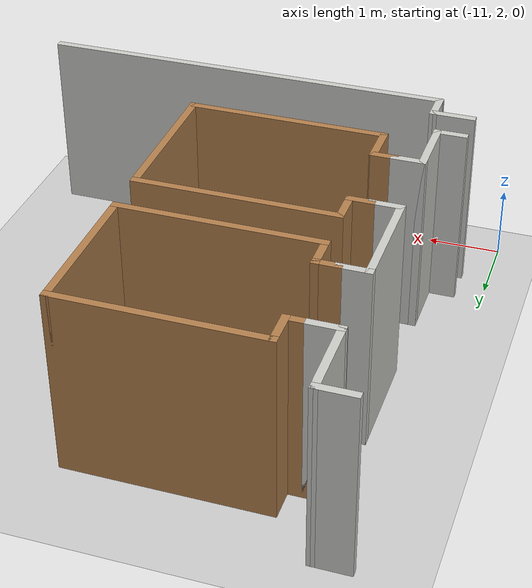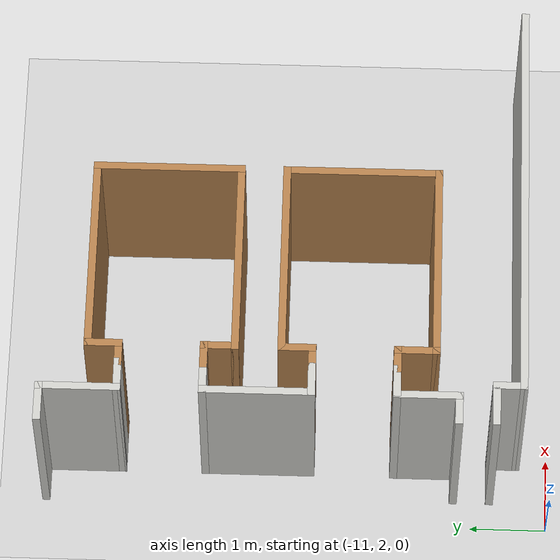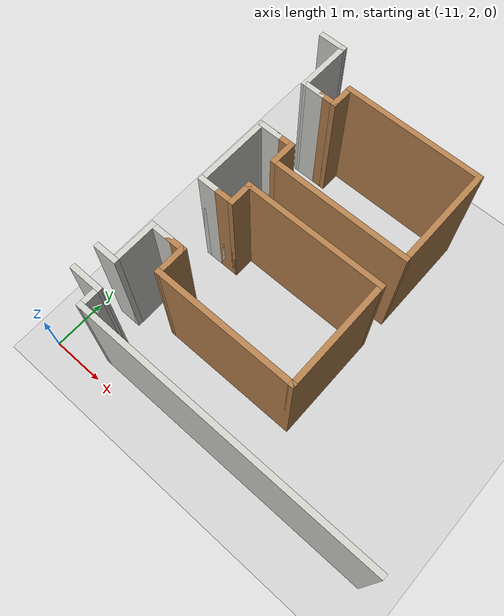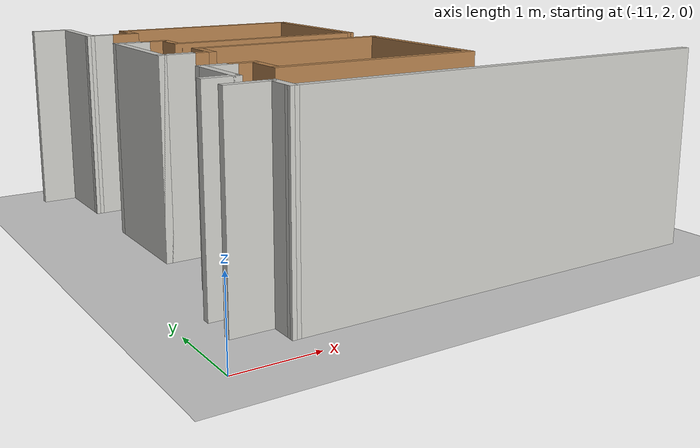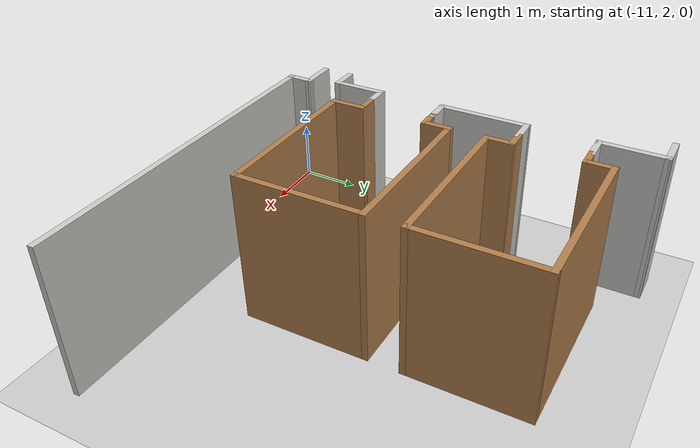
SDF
<sdf version="1.7">
 <world name="default">
  <model name="ground_plane">
   <static>1</static>
   <link name="link">
    <collision name="collision">
     <geometry><plane><normal>0 0 1</normal><size>100 100</size></plane></geometry>
     <surface><friction><ode><mu>100</mu><mu2>50</mu2></ode></friction></surface>
    </collision>
    <visual name="visual">
     <cast_shadows>0</cast_shadows>
     <geometry><plane><normal>0 0 1</normal><size>100 100</size></plane></geometry>
     <material>
      <script><uri>file://media/materials/scripts/gazebo.material</uri><name>Gazebo/Grey</name></script>
     </material>
    </visual>
   </link>
  </model>
  <model name="miraikan_5F_gate_and_elevator">
   <link name="Wall_114">
    <pose>-7.32984 11.21 0 0 -0 0</pose>
    <visual name="Wall_114_Visual">
     <pose>0 0 1.25 0 -0 0</pose>
     <geometry><box><size>0.54 0.1 2.5</size></box></geometry>
     <material>
      <script><uri>file://media/materials/scripts/gazebo.material</uri><name>Gazebo/CeilingTiled</name></script>
      <ambient>1 1 1 1</ambient>
      <shader type="pixel"/>
     </material>
     <meta><layer>0</layer></meta>
    </visual>
    <collision name="Wall_114_Collision">
     <pose>0 0 1.25 0 -0 0</pose>
     <geometry><box><size>0.54 0.1 2.5</size></box></geometry>
     <surface>
      <friction>
       <ode><mu>1</mu><mu2>1</mu2><fdir1>0 0 0</fdir1><slip1>0</slip1><slip2>0</slip2></ode>
       <torsional>
        <coefficient>1</coefficient>
        <patch_radius>0</patch_radius>
        <surface_radius>0</surface_radius>
        <use_patch_radius>1</use_patch_radius>
        <ode><slip>0</slip></ode>
       </torsional>
      </friction>
      <bounce><restitution_coefficient>0</restitution_coefficient><threshold>1e+06</threshold></bounce>
      <contact>
       <collide_without_contact>0</collide_without_contact>
       <collide_without_contact_bitmask>1</collide_without_contact_bitmask>
       <collide_bitmask>1</collide_bitmask>
       <ode>
        <soft_cfm>0</soft_cfm>
        <soft_erp>0.2</soft_erp>
        <kp>1e+13</kp>
        <kd>1</kd>
        <max_vel>0.01</max_vel>
        <min_depth>0</min_depth>
       </ode>
       <bullet>
        <split_impulse>1</split_impulse>
        <split_impulse_penetration_threshold>-0.01</split_impulse_penetration_threshold>
        <soft_cfm>0</soft_cfm>
        <soft_erp>0.2</soft_erp>
        <kp>1e+13</kp>
        <kd>1</kd>
       </bullet>
      </contact>
     </surface>
    </collision>
   </link>
   <link name="Wall_116">
    <pose>-7.10992 10.71 0 0 0 -1.57095</pose>
    <visual name="Wall_116_Visual">
     <pose>0 0 1.25 0 -0 0</pose>
     <geometry><box><size>1.1 0.1 2.5</size></box></geometry>
     <material>
      <script><uri>file://media/materials/scripts/gazebo.material</uri><name>Gazebo/CeilingTiled</name></script>
      <ambient>1 1 1 1</ambient>
      <shader type="pixel"/>
     </material>
     <meta><layer>0</layer></meta>
    </visual>
    <collision name="Wall_116_Collision">
     <pose>0 0 1.25 0 -0 0</pose>
     <geometry><box><size>1.1 0.1 2.5</size></box></geometry>
     <surface>
      <friction>
       <ode><mu>1</mu><mu2>1</mu2><fdir1>0 0 0</fdir1><slip1>0</slip1><slip2>0</slip2></ode>
       <torsional>
        <coefficient>1</coefficient>
        <patch_radius>0</patch_radius>
        <surface_radius>0</surface_radius>
        <use_patch_radius>1</use_patch_radius>
        <ode><slip>0</slip></ode>
       </torsional>
      </friction>
      <bounce><restitution_coefficient>0</restitution_coefficient><threshold>1e+06</threshold></bounce>
      <contact>
       <collide_without_contact>0</collide_without_contact>
       <collide_without_contact_bitmask>1</collide_without_contact_bitmask>
       <collide_bitmask>1</collide_bitmask>
       <ode>
        <soft_cfm>0</soft_cfm>
        <soft_erp>0.2</soft_erp>
        <kp>1e+13</kp>
        <kd>1</kd>
        <max_vel>0.01</max_vel>
        <min_depth>0</min_depth>
       </ode>
       <bullet>
        <split_impulse>1</split_impulse>
        <split_impulse_penetration_threshold>-0.01</split_impulse_penetration_threshold>
        <soft_cfm>0</soft_cfm>
        <soft_erp>0.2</soft_erp>
        <kp>1e+13</kp>
        <kd>1</kd>
       </bullet>
      </contact>
     </surface>
    </collision>
   </link>
   <link name="Wall_118">
    <pose>-6.93 10.21 0 0 -0 0</pose>
    <visual name="Wall_118_Visual">
     <pose>0 0 1.25 0 -0 0</pose>
     <geometry><box><size>0.46 0.1 2.5</size></box></geometry>
     <material>
      <script><uri>file://media/materials/scripts/gazebo.material</uri><name>Gazebo/CeilingTiled</name></script>
      <ambient>1 1 1 1</ambient>
      <shader type="pixel"/>
     </material>
     <meta><layer>0</layer></meta>
    </visual>
    <collision name="Wall_118_Collision">
     <pose>0 0 1.25 0 -0 0</pose>
     <geometry><box><size>0.46 0.1 2.5</size></box></geometry>
     <surface>
      <friction>
       <ode><mu>1</mu><mu2>1</mu2><fdir1>0 0 0</fdir1><slip1>0</slip1><slip2>0</slip2></ode>
       <torsional>
        <coefficient>1</coefficient>
        <patch_radius>0</patch_radius>
        <surface_radius>0</surface_radius>
        <use_patch_radius>1</use_patch_radius>
        <ode><slip>0</slip></ode>
       </torsional>
      </friction>
      <bounce><restitution_coefficient>0</restitution_coefficient><threshold>1e+06</threshold></bounce>
      <contact>
       <collide_without_contact>0</collide_without_contact>
       <collide_without_contact_bitmask>1</collide_without_contact_bitmask>
       <collide_bitmask>1</collide_bitmask>
       <ode>
        <soft_cfm>0</soft_cfm>
        <soft_erp>0.2</soft_erp>
        <kp>1e+13</kp>
        <kd>1</kd>
        <max_vel>0.01</max_vel>
        <min_depth>0</min_depth>
       </ode>
       <bullet>
        <split_impulse>1</split_impulse>
        <split_impulse_penetration_threshold>-0.01</split_impulse_penetration_threshold>
        <soft_cfm>0</soft_cfm>
        <soft_erp>0.2</soft_erp>
        <kp>1e+13</kp>
        <kd>1</kd>
       </bullet>
      </contact>
     </surface>
    </collision>
   </link>
   <link name="Wall_122">
    <pose>-6.93 9.11 0 0 -0 3.14159</pose>
    <visual name="Wall_122_Visual">
     <pose>0 0 1.25 0 -0 0</pose>
     <geometry><box><size>0.46 0.1 2.5</size></box></geometry>
     <material>
      <script><uri>file://media/materials/scripts/gazebo.material</uri><name>Gazebo/CeilingTiled</name></script>
      <ambient>1 1 1 1</ambient>
      <shader type="pixel"/>
     </material>
     <meta><layer>0</layer></meta>
    </visual>
    <collision name="Wall_122_Collision">
     <pose>0 0 1.25 0 -0 0</pose>
     <geometry><box><size>0.46 0.1 2.5</size></box></geometry>
     <surface>
      <friction>
       <ode><mu>1</mu><mu2>1</mu2><fdir1>0 0 0</fdir1><slip1>0</slip1><slip2>0</slip2></ode>
       <torsional>
        <coefficient>1</coefficient>
        <patch_radius>0</patch_radius>
        <surface_radius>0</surface_radius>
        <use_patch_radius>1</use_patch_radius>
        <ode><slip>0</slip></ode>
       </torsional>
      </friction>
      <bounce><restitution_coefficient>0</restitution_coefficient><threshold>1e+06</threshold></bounce>
      <contact>
       <collide_without_contact>0</collide_without_contact>
       <collide_without_contact_bitmask>1</collide_without_contact_bitmask>
       <collide_bitmask>1</collide_bitmask>
       <ode>
        <soft_cfm>0</soft_cfm>
        <soft_erp>0.2</soft_erp>
        <kp>1e+13</kp>
        <kd>1</kd>
        <max_vel>0.01</max_vel>
        <min_depth>0</min_depth>
       </ode>
       <bullet>
        <split_impulse>1</split_impulse>
        <split_impulse_penetration_threshold>-0.01</split_impulse_penetration_threshold>
        <soft_cfm>0</soft_cfm>
        <soft_erp>0.2</soft_erp>
        <kp>1e+13</kp>
        <kd>1</kd>
       </bullet>
      </contact>
     </surface>
    </collision>
   </link>
   <link name="Wall_124">
    <pose>-7.11 8.41 0 0 0 -1.5708</pose>
    <visual name="Wall_124_Visual">
     <pose>0 0 1.25 0 -0 0</pose>
     <geometry><box><size>1.5 0.1 2.5</size></box></geometry>
     <material>
      <script><uri>file://media/materials/scripts/gazebo.material</uri><name>Gazebo/CeilingTiled</name></script>
      <ambient>1 1 1 1</ambient>
      <shader type="pixel"/>
     </material>
     <meta><layer>0</layer></meta>
    </visual>
    <collision name="Wall_124_Collision">
     <pose>0 0 1.25 0 -0 0</pose>
     <geometry><box><size>1.5 0.1 2.5</size></box></geometry>
     <surface>
      <friction>
       <ode><mu>1</mu><mu2>1</mu2><fdir1>0 0 0</fdir1><slip1>0</slip1><slip2>0</slip2></ode>
       <torsional>
        <coefficient>1</coefficient>
        <patch_radius>0</patch_radius>
        <surface_radius>0</surface_radius>
        <use_patch_radius>1</use_patch_radius>
        <ode><slip>0</slip></ode>
       </torsional>
      </friction>
      <bounce><restitution_coefficient>0</restitution_coefficient><threshold>1e+06</threshold></bounce>
      <contact>
       <collide_without_contact>0</collide_without_contact>
       <collide_without_contact_bitmask>1</collide_without_contact_bitmask>
       <collide_bitmask>1</collide_bitmask>
       <ode>
        <soft_cfm>0</soft_cfm>
        <soft_erp>0.2</soft_erp>
        <kp>1e+13</kp>
        <kd>1</kd>
        <max_vel>0.01</max_vel>
        <min_depth>0</min_depth>
       </ode>
       <bullet>
        <split_impulse>1</split_impulse>
        <split_impulse_penetration_threshold>-0.01</split_impulse_penetration_threshold>
        <soft_cfm>0</soft_cfm>
        <soft_erp>0.2</soft_erp>
        <kp>1e+13</kp>
        <kd>1</kd>
       </bullet>
      </contact>
     </surface>
    </collision>
   </link>
   <link name="Wall_126">
    <pose>-6.93 7.71 0 0 -0 0</pose>
    <visual name="Wall_126_Visual">
     <pose>0 0 1.25 0 -0 0</pose>
     <geometry><box><size>0.46 0.1 2.5</size></box></geometry>
     <material>
      <script><uri>file://media/materials/scripts/gazebo.material</uri><name>Gazebo/CeilingTiled</name></script>
      <ambient>1 1 1 1</ambient>
      <shader type="pixel"/>
     </material>
     <meta><layer>0</layer></meta>
    </visual>
    <collision name="Wall_126_Collision">
     <pose>0 0 1.25 0 -0 0</pose>
     <geometry><box><size>0.46 0.1 2.5</size></box></geometry>
     <surface>
      <friction>
       <ode><mu>1</mu><mu2>1</mu2><fdir1>0 0 0</fdir1><slip1>0</slip1><slip2>0</slip2></ode>
       <torsional>
        <coefficient>1</coefficient>
        <patch_radius>0</patch_radius>
        <surface_radius>0</surface_radius>
        <use_patch_radius>1</use_patch_radius>
        <ode><slip>0</slip></ode>
       </torsional>
      </friction>
      <bounce><restitution_coefficient>0</restitution_coefficient><threshold>1e+06</threshold></bounce>
      <contact>
       <collide_without_contact>0</collide_without_contact>
       <collide_without_contact_bitmask>1</collide_without_contact_bitmask>
       <collide_bitmask>1</collide_bitmask>
       <ode>
        <soft_cfm>0</soft_cfm>
        <soft_erp>0.2</soft_erp>
        <kp>1e+13</kp>
        <kd>1</kd>
        <max_vel>0.01</max_vel>
        <min_depth>0</min_depth>
       </ode>
       <bullet>
        <split_impulse>1</split_impulse>
        <split_impulse_penetration_threshold>-0.01</split_impulse_penetration_threshold>
        <soft_cfm>0</soft_cfm>
        <soft_erp>0.2</soft_erp>
        <kp>1e+13</kp>
        <kd>1</kd>
       </bullet>
      </contact>
     </surface>
    </collision>
   </link>
   <link name="Wall_130">
    <pose>-6.93 6.61 0 0 -0 3.14159</pose>
    <visual name="Wall_130_Visual">
     <pose>0 0 1.25 0 -0 0</pose>
     <geometry><box><size>0.46 0.1 2.5</size></box></geometry>
     <material>
      <script><uri>file://media/materials/scripts/gazebo.material</uri><name>Gazebo/CeilingTiled</name></script>
      <ambient>1 1 1 1</ambient>
      <shader type="pixel"/>
     </material>
     <meta><layer>0</layer></meta>
    </visual>
    <collision name="Wall_130_Collision">
     <pose>0 0 1.25 0 -0 0</pose>
     <geometry><box><size>0.46 0.1 2.5</size></box></geometry>
     <surface>
      <friction>
       <ode><mu>1</mu><mu2>1</mu2><fdir1>0 0 0</fdir1><slip1>0</slip1><slip2>0</slip2></ode>
       <torsional>
        <coefficient>1</coefficient>
        <patch_radius>0</patch_radius>
        <surface_radius>0</surface_radius>
        <use_patch_radius>1</use_patch_radius>
        <ode><slip>0</slip></ode>
       </torsional>
      </friction>
      <bounce><restitution_coefficient>0</restitution_coefficient><threshold>1e+06</threshold></bounce>
      <contact>
       <collide_without_contact>0</collide_without_contact>
       <collide_without_contact_bitmask>1</collide_without_contact_bitmask>
       <collide_bitmask>1</collide_bitmask>
       <ode>
        <soft_cfm>0</soft_cfm>
        <soft_erp>0.2</soft_erp>
        <kp>1e+13</kp>
        <kd>1</kd>
        <max_vel>0.01</max_vel>
        <min_depth>0</min_depth>
       </ode>
       <bullet>
        <split_impulse>1</split_impulse>
        <split_impulse_penetration_threshold>-0.01</split_impulse_penetration_threshold>
        <soft_cfm>0</soft_cfm>
        <soft_erp>0.2</soft_erp>
        <kp>1e+13</kp>
        <kd>1</kd>
       </bullet>
      </contact>
     </surface>
    </collision>
   </link>
   <link name="Wall_132">
    <pose>-7.11 6.21 0 0 0 -1.5708</pose>
    <visual name="Wall_132_Visual">
     <pose>0 0 1.25 0 -0 0</pose>
     <geometry><box><size>0.9 0.1 2.5</size></box></geometry>
     <material>
      <script><uri>file://media/materials/scripts/gazebo.material</uri><name>Gazebo/CeilingTiled</name></script>
      <ambient>1 1 1 1</ambient>
      <shader type="pixel"/>
     </material>
     <meta><layer>0</layer></meta>
    </visual>
    <collision name="Wall_132_Collision">
     <pose>0 0 1.25 0 -0 0</pose>
     <geometry><box><size>0.9 0.1 2.5</size></box></geometry>
     <surface>
      <friction>
       <ode><mu>1</mu><mu2>1</mu2><fdir1>0 0 0</fdir1><slip1>0</slip1><slip2>0</slip2></ode>
       <torsional>
        <coefficient>1</coefficient>
        <patch_radius>0</patch_radius>
        <surface_radius>0</surface_radius>
        <use_patch_radius>1</use_patch_radius>
        <ode><slip>0</slip></ode>
       </torsional>
      </friction>
      <bounce><restitution_coefficient>0</restitution_coefficient><threshold>1e+06</threshold></bounce>
      <contact>
       <collide_without_contact>0</collide_without_contact>
       <collide_without_contact_bitmask>1</collide_without_contact_bitmask>
       <collide_bitmask>1</collide_bitmask>
       <ode>
        <soft_cfm>0</soft_cfm>
        <soft_erp>0.2</soft_erp>
        <kp>1e+13</kp>
        <kd>1</kd>
        <max_vel>0.01</max_vel>
        <min_depth>0</min_depth>
       </ode>
       <bullet>
        <split_impulse>1</split_impulse>
        <split_impulse_penetration_threshold>-0.01</split_impulse_penetration_threshold>
        <soft_cfm>0</soft_cfm>
        <soft_erp>0.2</soft_erp>
        <kp>1e+13</kp>
        <kd>1</kd>
       </bullet>
      </contact>
     </surface>
    </collision>
   </link>
   <link name="Wall_134">
    <pose>-7.285 5.81 0 0 -0 3.14159</pose>
    <visual name="Wall_134_Visual">
     <pose>0 0 1.25 0 -0 0</pose>
     <geometry><box><size>0.45 0.1 2.5</size></box></geometry>
     <material>
      <script><uri>file://media/materials/scripts/gazebo.material</uri><name>Gazebo/CeilingTiled</name></script>
      <ambient>1 1 1 1</ambient>
      <shader type="pixel"/>
     </material>
     <meta><layer>0</layer></meta>
    </visual>
    <collision name="Wall_134_Collision">
     <pose>0 0 1.25 0 -0 0</pose>
     <geometry><box><size>0.45 0.1 2.5</size></box></geometry>
     <surface>
      <friction>
       <ode><mu>1</mu><mu2>1</mu2><fdir1>0 0 0</fdir1><slip1>0</slip1><slip2>0</slip2></ode>
       <torsional>
        <coefficient>1</coefficient>
        <patch_radius>0</patch_radius>
        <surface_radius>0</surface_radius>
        <use_patch_radius>1</use_patch_radius>
        <ode><slip>0</slip></ode>
       </torsional>
      </friction>
      <bounce><restitution_coefficient>0</restitution_coefficient><threshold>1e+06</threshold></bounce>
      <contact>
       <collide_without_contact>0</collide_without_contact>
       <collide_without_contact_bitmask>1</collide_without_contact_bitmask>
       <collide_bitmask>1</collide_bitmask>
       <ode>
        <soft_cfm>0</soft_cfm>
        <soft_erp>0.2</soft_erp>
        <kp>1e+13</kp>
        <kd>1</kd>
        <max_vel>0.01</max_vel>
        <min_depth>0</min_depth>
       </ode>
       <bullet>
        <split_impulse>1</split_impulse>
        <split_impulse_penetration_threshold>-0.01</split_impulse_penetration_threshold>
        <soft_cfm>0</soft_cfm>
        <soft_erp>0.2</soft_erp>
        <kp>1e+13</kp>
        <kd>1</kd>
       </bullet>
      </contact>
     </surface>
    </collision>
   </link>
   <link name="Wall_143">
    <pose>-7.20482 5.33 0 0 -0 0</pose>
    <visual name="Wall_143_Visual">
     <pose>0 0 1.25 0 -0 0</pose>
     <geometry><box><size>0.61 0.1 2.5</size></box></geometry>
     <material>
      <script><uri>file://media/materials/scripts/gazebo.material</uri><name>Gazebo/CeilingTiled</name></script>
      <ambient>1 1 1 1</ambient>
      <shader type="pixel"/>
     </material>
     <meta><layer>0</layer></meta>
    </visual>
    <collision name="Wall_143_Collision">
     <pose>0 0 1.25 0 -0 0</pose>
     <geometry><box><size>0.61 0.1 2.5</size></box></geometry>
     <surface>
      <friction>
       <ode><mu>1</mu><mu2>1</mu2><fdir1>0 0 0</fdir1><slip1>0</slip1><slip2>0</slip2></ode>
       <torsional>
        <coefficient>1</coefficient>
        <patch_radius>0</patch_radius>
        <surface_radius>0</surface_radius>
        <use_patch_radius>1</use_patch_radius>
        <ode><slip>0</slip></ode>
       </torsional>
      </friction>
      <bounce><restitution_coefficient>0</restitution_coefficient><threshold>1e+06</threshold></bounce>
      <contact>
       <collide_without_contact>0</collide_without_contact>
       <collide_without_contact_bitmask>1</collide_without_contact_bitmask>
       <collide_bitmask>1</collide_bitmask>
       <ode>
        <soft_cfm>0</soft_cfm>
        <soft_erp>0.2</soft_erp>
        <kp>1e+13</kp>
        <kd>1</kd>
        <max_vel>0.01</max_vel>
        <min_depth>0</min_depth>
       </ode>
       <bullet>
        <split_impulse>1</split_impulse>
        <split_impulse_penetration_threshold>-0.01</split_impulse_penetration_threshold>
        <soft_cfm>0</soft_cfm>
        <soft_erp>0.2</soft_erp>
        <kp>1e+13</kp>
        <kd>1</kd>
       </bullet>
      </contact>
     </surface>
    </collision>
   </link>
   <link name="Wall_147">
    <pose>-6.94991 5.155 0 0 0 -1.5713</pose>
    <visual name="Wall_147_Visual">
     <pose>0 0 1.25 0 -0 0</pose>
     <geometry><box><size>0.45 0.1 2.5</size></box></geometry>
     <material>
      <script><uri>file://media/materials/scripts/gazebo.material</uri><name>Gazebo/CeilingTiled</name></script>
      <ambient>1 1 1 1</ambient>
      <shader type="pixel"/>
     </material>
     <meta><layer>0</layer></meta>
    </visual>
    <collision name="Wall_147_Collision">
     <pose>0 0 1.25 0 -0 0</pose>
     <geometry><box><size>0.45 0.1 2.5</size></box></geometry>
     <surface>
      <friction>
       <ode><mu>1</mu><mu2>1</mu2><fdir1>0 0 0</fdir1><slip1>0</slip1><slip2>0</slip2></ode>
       <torsional>
        <coefficient>1</coefficient>
        <patch_radius>0</patch_radius>
        <surface_radius>0</surface_radius>
        <use_patch_radius>1</use_patch_radius>
        <ode><slip>0</slip></ode>
       </torsional>
      </friction>
      <bounce><restitution_coefficient>0</restitution_coefficient><threshold>1e+06</threshold></bounce>
      <contact>
       <collide_without_contact>0</collide_without_contact>
       <collide_without_contact_bitmask>1</collide_without_contact_bitmask>
       <collide_bitmask>1</collide_bitmask>
       <ode>
        <soft_cfm>0</soft_cfm>
        <soft_erp>0.2</soft_erp>
        <kp>1e+13</kp>
        <kd>1</kd>
        <max_vel>0.01</max_vel>
        <min_depth>0</min_depth>
       </ode>
       <bullet>
        <split_impulse>1</split_impulse>
        <split_impulse_penetration_threshold>-0.01</split_impulse_penetration_threshold>
        <soft_cfm>0</soft_cfm>
        <soft_erp>0.2</soft_erp>
        <kp>1e+13</kp>
        <kd>1</kd>
       </bullet>
      </contact>
     </surface>
    </collision>
   </link>
   <link name="Wall_149">
    <pose>-4.2 4.98 0 0 -0 0</pose>
    <visual name="Wall_149_Visual">
     <pose>0 0 1.25 0 -0 0</pose>
     <geometry><box><size>5.6 0.1 2.5</size></box></geometry>
     <material>
      <script><uri>file://media/materials/scripts/gazebo.material</uri><name>Gazebo/CeilingTiled</name></script>
      <ambient>1 1 1 1</ambient>
      <shader type="pixel"/>
     </material>
     <meta><layer>0</layer></meta>
    </visual>
    <collision name="Wall_149_Collision">
     <pose>0 0 1.25 0 -0 0</pose>
     <geometry><box><size>5.6 0.1 2.5</size></box></geometry>
     <surface>
      <friction>
       <ode><mu>1</mu><mu2>1</mu2><fdir1>0 0 0</fdir1><slip1>0</slip1><slip2>0</slip2></ode>
       <torsional>
        <coefficient>1</coefficient>
        <patch_radius>0</patch_radius>
        <surface_radius>0</surface_radius>
        <use_patch_radius>1</use_patch_radius>
        <ode><slip>0</slip></ode>
       </torsional>
      </friction>
      <bounce><restitution_coefficient>0</restitution_coefficient><threshold>1e+06</threshold></bounce>
      <contact>
       <collide_without_contact>0</collide_without_contact>
       <collide_without_contact_bitmask>1</collide_without_contact_bitmask>
       <collide_bitmask>1</collide_bitmask>
       <ode>
        <soft_cfm>0</soft_cfm>
        <soft_erp>0.2</soft_erp>
        <kp>1e+13</kp>
        <kd>1</kd>
        <max_vel>0.01</max_vel>
        <min_depth>0</min_depth>
       </ode>
       <bullet>
        <split_impulse>1</split_impulse>
        <split_impulse_penetration_threshold>-0.01</split_impulse_penetration_threshold>
        <soft_cfm>0</soft_cfm>
        <soft_erp>0.2</soft_erp>
        <kp>1e+13</kp>
        <kd>1</kd>
       </bullet>
      </contact>
     </surface>
    </collision>
   </link>
   <link name="Wall_433">
    <pose>-6.615 6.61 0 0 -0 0</pose>
    <visual name="Wall_433_Visual">
     <pose>0 0 1.25 0 -0 0</pose>
     <geometry><box><size>0.37 0.1 2.5</size></box></geometry>
     <material>
      <script><uri>file://media/materials/scripts/gazebo.material</uri><name>Gazebo/Wood</name></script>
      <ambient>1 1 1 1</ambient>
      <shader type="pixel"/>
     </material>
     <meta><layer>0</layer></meta>
    </visual>
    <collision name="Wall_433_Collision">
     <pose>0 0 1.25 0 -0 0</pose>
     <geometry><box><size>0.37 0.1 2.5</size></box></geometry>
     <surface>
      <friction>
       <ode><mu>1</mu><mu2>1</mu2><fdir1>0 0 0</fdir1><slip1>0</slip1><slip2>0</slip2></ode>
       <torsional>
        <coefficient>1</coefficient>
        <patch_radius>0</patch_radius>
        <surface_radius>0</surface_radius>
        <use_patch_radius>1</use_patch_radius>
        <ode><slip>0</slip></ode>
       </torsional>
      </friction>
      <bounce><restitution_coefficient>0</restitution_coefficient><threshold>1e+06</threshold></bounce>
      <contact>
       <collide_without_contact>0</collide_without_contact>
       <collide_without_contact_bitmask>1</collide_without_contact_bitmask>
       <collide_bitmask>1</collide_bitmask>
       <ode>
        <soft_cfm>0</soft_cfm>
        <soft_erp>0.2</soft_erp>
        <kp>1e+13</kp>
        <kd>1</kd>
        <max_vel>0.01</max_vel>
        <min_depth>0</min_depth>
       </ode>
       <bullet>
        <split_impulse>1</split_impulse>
        <split_impulse_penetration_threshold>-0.01</split_impulse_penetration_threshold>
        <soft_cfm>0</soft_cfm>
        <soft_erp>0.2</soft_erp>
        <kp>1e+13</kp>
        <kd>1</kd>
       </bullet>
      </contact>
     </surface>
    </collision>
   </link>
   <link name="Wall_439">
    <pose>-6.48 6.36 0 0 0 -1.5708</pose>
    <visual name="Wall_439_Visual">
     <pose>0 0 1.25 0 -0 0</pose>
     <geometry><box><size>0.6 0.1 2.5</size></box></geometry>
     <material>
      <script><uri>file://media/materials/scripts/gazebo.material</uri><name>Gazebo/Wood</name></script>
      <ambient>1 1 1 1</ambient>
      <shader type="pixel"/>
     </material>
     <meta><layer>0</layer></meta>
    </visual>
    <collision name="Wall_439_Collision">
     <pose>0 0 1.25 0 -0 0</pose>
     <geometry><box><size>0.6 0.1 2.5</size></box></geometry>
     <surface>
      <friction>
       <ode><mu>1</mu><mu2>1</mu2><fdir1>0 0 0</fdir1><slip1>0</slip1><slip2>0</slip2></ode>
       <torsional>
        <coefficient>1</coefficient>
        <patch_radius>0</patch_radius>
        <surface_radius>0</surface_radius>
        <use_patch_radius>1</use_patch_radius>
        <ode><slip>0</slip></ode>
       </torsional>
      </friction>
      <bounce><restitution_coefficient>0</restitution_coefficient><threshold>1e+06</threshold></bounce>
      <contact>
       <collide_without_contact>0</collide_without_contact>
       <collide_without_contact_bitmask>1</collide_without_contact_bitmask>
       <collide_bitmask>1</collide_bitmask>
       <ode>
        <soft_cfm>0</soft_cfm>
        <soft_erp>0.2</soft_erp>
        <kp>1e+13</kp>
        <kd>1</kd>
        <max_vel>0.01</max_vel>
        <min_depth>0</min_depth>
       </ode>
       <bullet>
        <split_impulse>1</split_impulse>
        <split_impulse_penetration_threshold>-0.01</split_impulse_penetration_threshold>
        <soft_cfm>0</soft_cfm>
        <soft_erp>0.2</soft_erp>
        <kp>1e+13</kp>
        <kd>1</kd>
       </bullet>
      </contact>
     </surface>
    </collision>
   </link>
   <link name="Wall_441">
    <pose>-5.18 6.11 0 0 -0 0</pose>
    <visual name="Wall_441_Visual">
     <pose>0 0 1.25 0 -0 0</pose>
     <geometry><box><size>2.7 0.1 2.5</size></box></geometry>
     <material>
      <script><uri>file://media/materials/scripts/gazebo.material</uri><name>Gazebo/Wood</name></script>
      <ambient>1 1 1 1</ambient>
      <shader type="pixel"/>
     </material>
     <meta><layer>0</layer></meta>
    </visual>
    <collision name="Wall_441_Collision">
     <pose>0 0 1.25 0 -0 0</pose>
     <geometry><box><size>2.7 0.1 2.5</size></box></geometry>
     <surface>
      <friction>
       <ode><mu>1</mu><mu2>1</mu2><fdir1>0 0 0</fdir1><slip1>0</slip1><slip2>0</slip2></ode>
       <torsional>
        <coefficient>1</coefficient>
        <patch_radius>0</patch_radius>
        <surface_radius>0</surface_radius>
        <use_patch_radius>1</use_patch_radius>
        <ode><slip>0</slip></ode>
       </torsional>
      </friction>
      <bounce><restitution_coefficient>0</restitution_coefficient><threshold>1e+06</threshold></bounce>
      <contact>
       <collide_without_contact>0</collide_without_contact>
       <collide_without_contact_bitmask>1</collide_without_contact_bitmask>
       <collide_bitmask>1</collide_bitmask>
       <ode>
        <soft_cfm>0</soft_cfm>
        <soft_erp>0.2</soft_erp>
        <kp>1e+13</kp>
        <kd>1</kd>
        <max_vel>0.01</max_vel>
        <min_depth>0</min_depth>
       </ode>
       <bullet>
        <split_impulse>1</split_impulse>
        <split_impulse_penetration_threshold>-0.01</split_impulse_penetration_threshold>
        <soft_cfm>0</soft_cfm>
        <soft_erp>0.2</soft_erp>
        <kp>1e+13</kp>
        <kd>1</kd>
       </bullet>
      </contact>
     </surface>
    </collision>
   </link>
   <link name="Wall_443">
    <pose>-3.88 7.06 0 0 -0 1.5708</pose>
    <visual name="Wall_443_Visual">
     <pose>0 0 1.25 0 -0 0</pose>
     <geometry><box><size>2 0.1 2.5</size></box></geometry>
     <material>
      <script><uri>file://media/materials/scripts/gazebo.material</uri><name>Gazebo/Wood</name></script>
      <ambient>1 1 1 1</ambient>
      <shader type="pixel"/>
     </material>
     <meta><layer>0</layer></meta>
    </visual>
    <collision name="Wall_443_Collision">
     <pose>0 0 1.25 0 -0 0</pose>
     <geometry><box><size>2 0.1 2.5</size></box></geometry>
     <surface>
      <friction>
       <ode><mu>1</mu><mu2>1</mu2><fdir1>0 0 0</fdir1><slip1>0</slip1><slip2>0</slip2></ode>
       <torsional>
        <coefficient>1</coefficient>
        <patch_radius>0</patch_radius>
        <surface_radius>0</surface_radius>
        <use_patch_radius>1</use_patch_radius>
        <ode><slip>0</slip></ode>
       </torsional>
      </friction>
      <bounce><restitution_coefficient>0</restitution_coefficient><threshold>1e+06</threshold></bounce>
      <contact>
       <collide_without_contact>0</collide_without_contact>
       <collide_without_contact_bitmask>1</collide_without_contact_bitmask>
       <collide_bitmask>1</collide_bitmask>
       <ode>
        <soft_cfm>0</soft_cfm>
        <soft_erp>0.2</soft_erp>
        <kp>1e+13</kp>
        <kd>1</kd>
        <max_vel>0.01</max_vel>
        <min_depth>0</min_depth>
       </ode>
       <bullet>
        <split_impulse>1</split_impulse>
        <split_impulse_penetration_threshold>-0.01</split_impulse_penetration_threshold>
        <soft_cfm>0</soft_cfm>
        <soft_erp>0.2</soft_erp>
        <kp>1e+13</kp>
        <kd>1</kd>
       </bullet>
      </contact>
     </surface>
    </collision>
   </link>
   <link name="Wall_445">
    <pose>-6.615 7.71 0 0 -0 0</pose>
    <visual name="Wall_445_Visual">
     <pose>0 0 1.25 0 -0 0</pose>
     <geometry><box><size>0.37 0.1 2.5</size></box></geometry>
     <material>
      <script><uri>file://media/materials/scripts/gazebo.material</uri><name>Gazebo/Wood</name></script>
      <ambient>1 1 1 1</ambient>
      <shader type="pixel"/>
     </material>
     <meta><layer>0</layer></meta>
    </visual>
    <collision name="Wall_445_Collision">
     <pose>0 0 1.25 0 -0 0</pose>
     <geometry><box><size>0.37 0.1 2.5</size></box></geometry>
     <surface>
      <friction>
       <ode><mu>1</mu><mu2>1</mu2><fdir1>0 0 0</fdir1><slip1>0</slip1><slip2>0</slip2></ode>
       <torsional>
        <coefficient>1</coefficient>
        <patch_radius>0</patch_radius>
        <surface_radius>0</surface_radius>
        <use_patch_radius>1</use_patch_radius>
        <ode><slip>0</slip></ode>
       </torsional>
      </friction>
      <bounce><restitution_coefficient>0</restitution_coefficient><threshold>1e+06</threshold></bounce>
      <contact>
       <collide_without_contact>0</collide_without_contact>
       <collide_without_contact_bitmask>1</collide_without_contact_bitmask>
       <collide_bitmask>1</collide_bitmask>
       <ode>
        <soft_cfm>0</soft_cfm>
        <soft_erp>0.2</soft_erp>
        <kp>1e+13</kp>
        <kd>1</kd>
        <max_vel>0.01</max_vel>
        <min_depth>0</min_depth>
       </ode>
       <bullet>
        <split_impulse>1</split_impulse>
        <split_impulse_penetration_threshold>-0.01</split_impulse_penetration_threshold>
        <soft_cfm>0</soft_cfm>
        <soft_erp>0.2</soft_erp>
        <kp>1e+13</kp>
        <kd>1</kd>
       </bullet>
      </contact>
     </surface>
    </collision>
   </link>
   <link name="Wall_447">
    <pose>-6.48 7.91 0 0 -0 1.5708</pose>
    <visual name="Wall_447_Visual">
     <pose>0 0 1.25 0 -0 0</pose>
     <geometry><box><size>0.5 0.1 2.5</size></box></geometry>
     <material>
      <script><uri>file://media/materials/scripts/gazebo.material</uri><name>Gazebo/Wood</name></script>
      <ambient>1 1 1 1</ambient>
      <shader type="pixel"/>
     </material>
     <meta><layer>0</layer></meta>
    </visual>
    <collision name="Wall_447_Collision">
     <pose>0 0 1.25 0 -0 0</pose>
     <geometry><box><size>0.5 0.1 2.5</size></box></geometry>
     <surface>
      <friction>
       <ode><mu>1</mu><mu2>1</mu2><fdir1>0 0 0</fdir1><slip1>0</slip1><slip2>0</slip2></ode>
       <torsional>
        <coefficient>1</coefficient>
        <patch_radius>0</patch_radius>
        <surface_radius>0</surface_radius>
        <use_patch_radius>1</use_patch_radius>
        <ode><slip>0</slip></ode>
       </torsional>
      </friction>
      <bounce><restitution_coefficient>0</restitution_coefficient><threshold>1e+06</threshold></bounce>
      <contact>
       <collide_without_contact>0</collide_without_contact>
       <collide_without_contact_bitmask>1</collide_without_contact_bitmask>
       <collide_bitmask>1</collide_bitmask>
       <ode>
        <soft_cfm>0</soft_cfm>
        <soft_erp>0.2</soft_erp>
        <kp>1e+13</kp>
        <kd>1</kd>
        <max_vel>0.01</max_vel>
        <min_depth>0</min_depth>
       </ode>
       <bullet>
        <split_impulse>1</split_impulse>
        <split_impulse_penetration_threshold>-0.01</split_impulse_penetration_threshold>
        <soft_cfm>0</soft_cfm>
        <soft_erp>0.2</soft_erp>
        <kp>1e+13</kp>
        <kd>1</kd>
       </bullet>
      </contact>
     </surface>
    </collision>
   </link>
   <link name="Wall_449">
    <pose>-5.18 8.11 0 0 -0 0</pose>
    <visual name="Wall_449_Visual">
     <pose>0 0 1.25 0 -0 0</pose>
     <geometry><box><size>2.7 0.1 2.5</size></box></geometry>
     <material>
      <script><uri>file://media/materials/scripts/gazebo.material</uri><name>Gazebo/Wood</name></script>
      <ambient>1 1 1 1</ambient>
      <shader type="pixel"/>
     </material>
     <meta><layer>0</layer></meta>
    </visual>
    <collision name="Wall_449_Collision">
     <pose>0 0 1.25 0 -0 0</pose>
     <geometry><box><size>2.7 0.1 2.5</size></box></geometry>
     <surface>
      <friction>
       <ode><mu>1</mu><mu2>1</mu2><fdir1>0 0 0</fdir1><slip1>0</slip1><slip2>0</slip2></ode>
       <torsional>
        <coefficient>1</coefficient>
        <patch_radius>0</patch_radius>
        <surface_radius>0</surface_radius>
        <use_patch_radius>1</use_patch_radius>
        <ode><slip>0</slip></ode>
       </torsional>
      </friction>
      <bounce><restitution_coefficient>0</restitution_coefficient><threshold>1e+06</threshold></bounce>
      <contact>
       <collide_without_contact>0</collide_without_contact>
       <collide_without_contact_bitmask>1</collide_without_contact_bitmask>
       <collide_bitmask>1</collide_bitmask>
       <ode>
        <soft_cfm>0</soft_cfm>
        <soft_erp>0.2</soft_erp>
        <kp>1e+13</kp>
        <kd>1</kd>
        <max_vel>0.01</max_vel>
        <min_depth>0</min_depth>
       </ode>
       <bullet>
        <split_impulse>1</split_impulse>
        <split_impulse_penetration_threshold>-0.01</split_impulse_penetration_threshold>
        <soft_cfm>0</soft_cfm>
        <soft_erp>0.2</soft_erp>
        <kp>1e+13</kp>
        <kd>1</kd>
       </bullet>
      </contact>
     </surface>
    </collision>
   </link>
   <link name="Wall_451">
    <pose>-6.615 9.11 0 0 -0 0</pose>
    <visual name="Wall_451_Visual">
     <pose>0 0 1.25 0 -0 0</pose>
     <geometry><box><size>0.37 0.1 2.5</size></box></geometry>
     <material>
      <script><uri>file://media/materials/scripts/gazebo.material</uri><name>Gazebo/Wood</name></script>
      <ambient>1 1 1 1</ambient>
      <shader type="pixel"/>
     </material>
     <meta><layer>0</layer></meta>
    </visual>
    <collision name="Wall_451_Collision">
     <pose>0 0 1.25 0 -0 0</pose>
     <geometry><box><size>0.37 0.1 2.5</size></box></geometry>
     <surface>
      <friction>
       <ode><mu>1</mu><mu2>1</mu2><fdir1>0 0 0</fdir1><slip1>0</slip1><slip2>0</slip2></ode>
       <torsional>
        <coefficient>1</coefficient>
        <patch_radius>0</patch_radius>
        <surface_radius>0</surface_radius>
        <use_patch_radius>1</use_patch_radius>
        <ode><slip>0</slip></ode>
       </torsional>
      </friction>
      <bounce><restitution_coefficient>0</restitution_coefficient><threshold>1e+06</threshold></bounce>
      <contact>
       <collide_without_contact>0</collide_without_contact>
       <collide_without_contact_bitmask>1</collide_without_contact_bitmask>
       <collide_bitmask>1</collide_bitmask>
       <ode>
        <soft_cfm>0</soft_cfm>
        <soft_erp>0.2</soft_erp>
        <kp>1e+13</kp>
        <kd>1</kd>
        <max_vel>0.01</max_vel>
        <min_depth>0</min_depth>
       </ode>
       <bullet>
        <split_impulse>1</split_impulse>
        <split_impulse_penetration_threshold>-0.01</split_impulse_penetration_threshold>
        <soft_cfm>0</soft_cfm>
        <soft_erp>0.2</soft_erp>
        <kp>1e+13</kp>
        <kd>1</kd>
       </bullet>
      </contact>
     </surface>
    </collision>
   </link>
   <link name="Wall_454">
    <pose>-6.48 8.91 0 0 0 -1.5708</pose>
    <visual name="Wall_454_Visual">
     <pose>0 0 1.25 0 -0 0</pose>
     <geometry><box><size>0.5 0.1 2.5</size></box></geometry>
     <material>
      <script><uri>file://media/materials/scripts/gazebo.material</uri><name>Gazebo/Wood</name></script>
      <ambient>1 1 1 1</ambient>
      <shader type="pixel"/>
     </material>
     <meta><layer>0</layer></meta>
    </visual>
    <collision name="Wall_454_Collision">
     <pose>0 0 1.25 0 -0 0</pose>
     <geometry><box><size>0.5 0.1 2.5</size></box></geometry>
     <surface>
      <friction>
       <ode><mu>1</mu><mu2>1</mu2><fdir1>0 0 0</fdir1><slip1>0</slip1><slip2>0</slip2></ode>
       <torsional>
        <coefficient>1</coefficient>
        <patch_radius>0</patch_radius>
        <surface_radius>0</surface_radius>
        <use_patch_radius>1</use_patch_radius>
        <ode><slip>0</slip></ode>
       </torsional>
      </friction>
      <bounce><restitution_coefficient>0</restitution_coefficient><threshold>1e+06</threshold></bounce>
      <contact>
       <collide_without_contact>0</collide_without_contact>
       <collide_without_contact_bitmask>1</collide_without_contact_bitmask>
       <collide_bitmask>1</collide_bitmask>
       <ode>
        <soft_cfm>0</soft_cfm>
        <soft_erp>0.2</soft_erp>
        <kp>1e+13</kp>
        <kd>1</kd>
        <max_vel>0.01</max_vel>
        <min_depth>0</min_depth>
       </ode>
       <bullet>
        <split_impulse>1</split_impulse>
        <split_impulse_penetration_threshold>-0.01</split_impulse_penetration_threshold>
        <soft_cfm>0</soft_cfm>
        <soft_erp>0.2</soft_erp>
        <kp>1e+13</kp>
        <kd>1</kd>
       </bullet>
      </contact>
     </surface>
    </collision>
   </link>
   <link name="Wall_456">
    <pose>-5.18 8.71 0 0 -0 0</pose>
    <visual name="Wall_456_Visual">
     <pose>0 0 1.25 0 -0 0</pose>
     <geometry><box><size>2.7 0.1 2.5</size></box></geometry>
     <material>
      <script><uri>file://media/materials/scripts/gazebo.material</uri><name>Gazebo/Wood</name></script>
      <ambient>1 1 1 1</ambient>
      <shader type="pixel"/>
     </material>
     <meta><layer>0</layer></meta>
    </visual>
    <collision name="Wall_456_Collision">
     <pose>0 0 1.25 0 -0 0</pose>
     <geometry><box><size>2.7 0.1 2.5</size></box></geometry>
     <surface>
      <friction>
       <ode><mu>1</mu><mu2>1</mu2><fdir1>0 0 0</fdir1><slip1>0</slip1><slip2>0</slip2></ode>
       <torsional>
        <coefficient>1</coefficient>
        <patch_radius>0</patch_radius>
        <surface_radius>0</surface_radius>
        <use_patch_radius>1</use_patch_radius>
        <ode><slip>0</slip></ode>
       </torsional>
      </friction>
      <bounce><restitution_coefficient>0</restitution_coefficient><threshold>1e+06</threshold></bounce>
      <contact>
       <collide_without_contact>0</collide_without_contact>
       <collide_without_contact_bitmask>1</collide_without_contact_bitmask>
       <collide_bitmask>1</collide_bitmask>
       <ode>
        <soft_cfm>0</soft_cfm>
        <soft_erp>0.2</soft_erp>
        <kp>1e+13</kp>
        <kd>1</kd>
        <max_vel>0.01</max_vel>
        <min_depth>0</min_depth>
       </ode>
       <bullet>
        <split_impulse>1</split_impulse>
        <split_impulse_penetration_threshold>-0.01</split_impulse_penetration_threshold>
        <soft_cfm>0</soft_cfm>
        <soft_erp>0.2</soft_erp>
        <kp>1e+13</kp>
        <kd>1</kd>
       </bullet>
      </contact>
     </surface>
    </collision>
   </link>
   <link name="Wall_458">
    <pose>-6.615 10.21 0 0 -0 0</pose>
    <visual name="Wall_458_Visual">
     <pose>0 0 1.25 0 -0 0</pose>
     <geometry><box><size>0.37 0.1 2.5</size></box></geometry>
     <material>
      <script><uri>file://media/materials/scripts/gazebo.material</uri><name>Gazebo/Wood</name></script>
      <ambient>1 1 1 1</ambient>
      <shader type="pixel"/>
     </material>
     <meta><layer>0</layer></meta>
    </visual>
    <collision name="Wall_458_Collision">
     <pose>0 0 1.25 0 -0 0</pose>
     <geometry><box><size>0.37 0.1 2.5</size></box></geometry>
     <surface>
      <friction>
       <ode><mu>1</mu><mu2>1</mu2><fdir1>0 0 0</fdir1><slip1>0</slip1><slip2>0</slip2></ode>
       <torsional>
        <coefficient>1</coefficient>
        <patch_radius>0</patch_radius>
        <surface_radius>0</surface_radius>
        <use_patch_radius>1</use_patch_radius>
        <ode><slip>0</slip></ode>
       </torsional>
      </friction>
      <bounce><restitution_coefficient>0</restitution_coefficient><threshold>1e+06</threshold></bounce>
      <contact>
       <collide_without_contact>0</collide_without_contact>
       <collide_without_contact_bitmask>1</collide_without_contact_bitmask>
       <collide_bitmask>1</collide_bitmask>
       <ode>
        <soft_cfm>0</soft_cfm>
        <soft_erp>0.2</soft_erp>
        <kp>1e+13</kp>
        <kd>1</kd>
        <max_vel>0.01</max_vel>
        <min_depth>0</min_depth>
       </ode>
       <bullet>
        <split_impulse>1</split_impulse>
        <split_impulse_penetration_threshold>-0.01</split_impulse_penetration_threshold>
        <soft_cfm>0</soft_cfm>
        <soft_erp>0.2</soft_erp>
        <kp>1e+13</kp>
        <kd>1</kd>
       </bullet>
      </contact>
     </surface>
    </collision>
   </link>
   <link name="Wall_460">
    <pose>-6.48 10.41 0 0 -0 1.5708</pose>
    <visual name="Wall_460_Visual">
     <pose>0 0 1.25 0 -0 0</pose>
     <geometry><box><size>0.5 0.1 2.5</size></box></geometry>
     <material>
      <script><uri>file://media/materials/scripts/gazebo.material</uri><name>Gazebo/Wood</name></script>
      <ambient>1 1 1 1</ambient>
      <shader type="pixel"/>
     </material>
     <meta><layer>0</layer></meta>
    </visual>
    <collision name="Wall_460_Collision">
     <pose>0 0 1.25 0 -0 0</pose>
     <geometry><box><size>0.5 0.1 2.5</size></box></geometry>
     <surface>
      <friction>
       <ode><mu>1</mu><mu2>1</mu2><fdir1>0 0 0</fdir1><slip1>0</slip1><slip2>0</slip2></ode>
       <torsional>
        <coefficient>1</coefficient>
        <patch_radius>0</patch_radius>
        <surface_radius>0</surface_radius>
        <use_patch_radius>1</use_patch_radius>
        <ode><slip>0</slip></ode>
       </torsional>
      </friction>
      <bounce><restitution_coefficient>0</restitution_coefficient><threshold>1e+06</threshold></bounce>
      <contact>
       <collide_without_contact>0</collide_without_contact>
       <collide_without_contact_bitmask>1</collide_without_contact_bitmask>
       <collide_bitmask>1</collide_bitmask>
       <ode>
        <soft_cfm>0</soft_cfm>
        <soft_erp>0.2</soft_erp>
        <kp>1e+13</kp>
        <kd>1</kd>
        <max_vel>0.01</max_vel>
        <min_depth>0</min_depth>
       </ode>
       <bullet>
        <split_impulse>1</split_impulse>
        <split_impulse_penetration_threshold>-0.01</split_impulse_penetration_threshold>
        <soft_cfm>0</soft_cfm>
        <soft_erp>0.2</soft_erp>
        <kp>1e+13</kp>
        <kd>1</kd>
       </bullet>
      </contact>
     </surface>
    </collision>
   </link>
   <link name="Wall_462">
    <pose>-5.18 10.61 0 0 -0 0</pose>
    <visual name="Wall_462_Visual">
     <pose>0 0 1.25 0 -0 0</pose>
     <geometry><box><size>2.7 0.1 2.5</size></box></geometry>
     <material>
      <script><uri>file://media/materials/scripts/gazebo.material</uri><name>Gazebo/Wood</name></script>
      <ambient>1 1 1 1</ambient>
      <shader type="pixel"/>
     </material>
     <meta><layer>0</layer></meta>
    </visual>
    <collision name="Wall_462_Collision">
     <pose>0 0 1.25 0 -0 0</pose>
     <geometry><box><size>2.7 0.1 2.5</size></box></geometry>
     <surface>
      <friction>
       <ode><mu>1</mu><mu2>1</mu2><fdir1>0 0 0</fdir1><slip1>0</slip1><slip2>0</slip2></ode>
       <torsional>
        <coefficient>1</coefficient>
        <patch_radius>0</patch_radius>
        <surface_radius>0</surface_radius>
        <use_patch_radius>1</use_patch_radius>
        <ode><slip>0</slip></ode>
       </torsional>
      </friction>
      <bounce><restitution_coefficient>0</restitution_coefficient><threshold>1e+06</threshold></bounce>
      <contact>
       <collide_without_contact>0</collide_without_contact>
       <collide_without_contact_bitmask>1</collide_without_contact_bitmask>
       <collide_bitmask>1</collide_bitmask>
       <ode>
        <soft_cfm>0</soft_cfm>
        <soft_erp>0.2</soft_erp>
        <kp>1e+13</kp>
        <kd>1</kd>
        <max_vel>0.01</max_vel>
        <min_depth>0</min_depth>
       </ode>
       <bullet>
        <split_impulse>1</split_impulse>
        <split_impulse_penetration_threshold>-0.01</split_impulse_penetration_threshold>
        <soft_cfm>0</soft_cfm>
        <soft_erp>0.2</soft_erp>
        <kp>1e+13</kp>
        <kd>1</kd>
       </bullet>
      </contact>
     </surface>
    </collision>
   </link>
   <link name="Wall_464">
    <pose>-3.88 9.66 0 0 0 -1.5708</pose>
    <visual name="Wall_464_Visual">
     <pose>0 0 1.25 0 -0 0</pose>
     <geometry><box><size>2 0.1 2.5</size></box></geometry>
     <material>
      <script><uri>file://media/materials/scripts/gazebo.material</uri><name>Gazebo/Wood</name></script>
      <ambient>1 1 1 1</ambient>
      <shader type="pixel"/>
     </material>
     <meta><layer>0</layer></meta>
    </visual>
    <collision name="Wall_464_Collision">
     <pose>0 0 1.25 0 -0 0</pose>
     <geometry><box><size>2 0.1 2.5</size></box></geometry>
     <surface>
      <friction>
       <ode><mu>1</mu><mu2>1</mu2><fdir1>0 0 0</fdir1><slip1>0</slip1><slip2>0</slip2></ode>
       <torsional>
        <coefficient>1</coefficient>
        <patch_radius>0</patch_radius>
        <surface_radius>0</surface_radius>
        <use_patch_radius>1</use_patch_radius>
        <ode><slip>0</slip></ode>
       </torsional>
      </friction>
      <bounce><restitution_coefficient>0</restitution_coefficient><threshold>1e+06</threshold></bounce>
      <contact>
       <collide_without_contact>0</collide_without_contact>
       <collide_without_contact_bitmask>1</collide_without_contact_bitmask>
       <collide_bitmask>1</collide_bitmask>
       <ode>
        <soft_cfm>0</soft_cfm>
        <soft_erp>0.2</soft_erp>
        <kp>1e+13</kp>
        <kd>1</kd>
        <max_vel>0.01</max_vel>
        <min_depth>0</min_depth>
       </ode>
       <bullet>
        <split_impulse>1</split_impulse>
        <split_impulse_penetration_threshold>-0.01</split_impulse_penetration_threshold>
        <soft_cfm>0</soft_cfm>
        <soft_erp>0.2</soft_erp>
        <kp>1e+13</kp>
        <kd>1</kd>
       </bullet>
      </contact>
     </surface>
    </collision>
   </link>
   <static>1</static>
   <pose>-3.12968 -2.57927 0 0 -0 0</pose>
  </model>
 </world>
</sdf>
